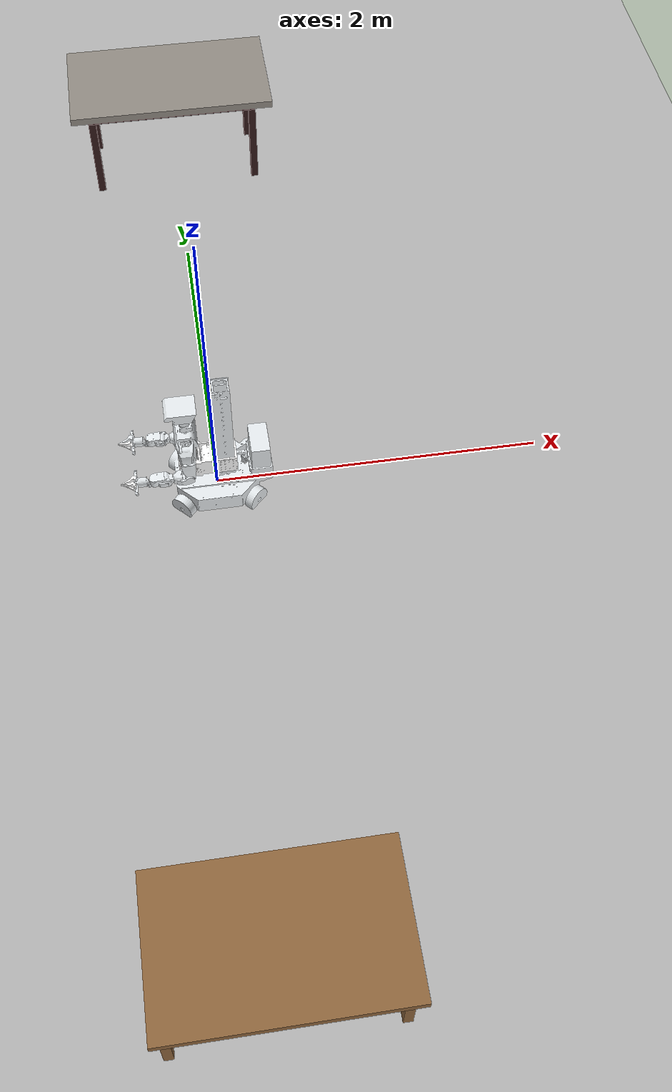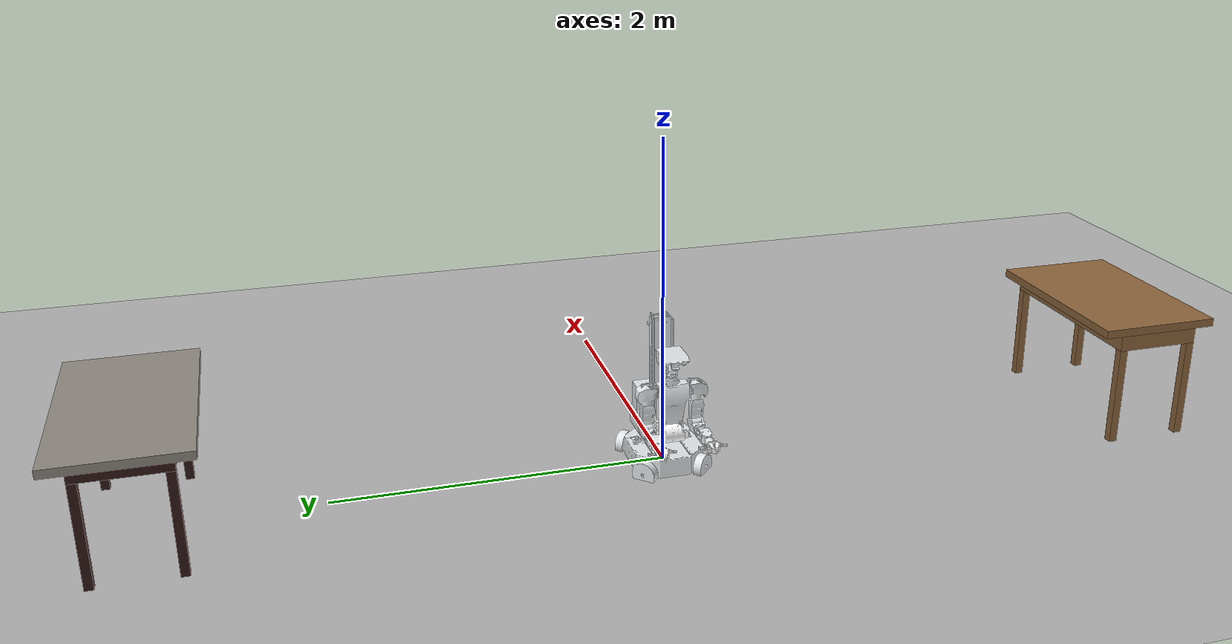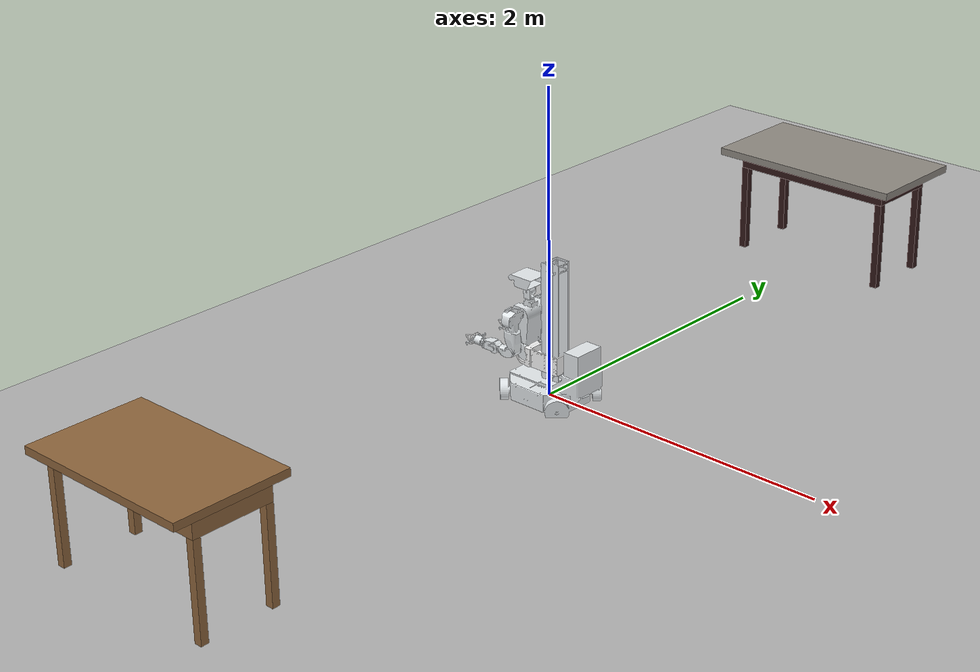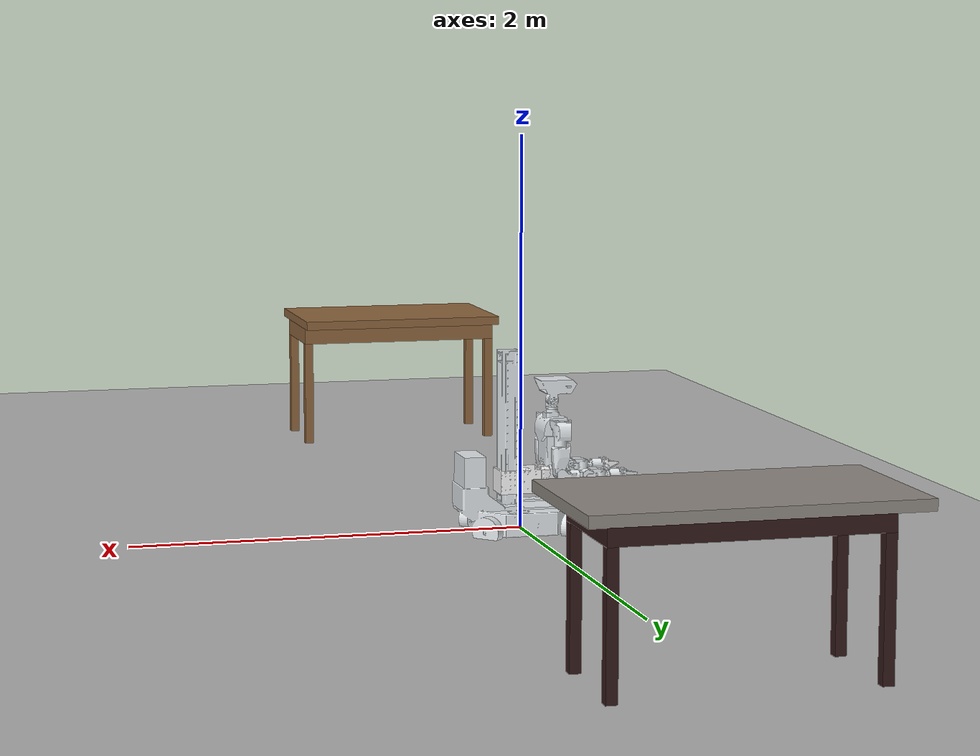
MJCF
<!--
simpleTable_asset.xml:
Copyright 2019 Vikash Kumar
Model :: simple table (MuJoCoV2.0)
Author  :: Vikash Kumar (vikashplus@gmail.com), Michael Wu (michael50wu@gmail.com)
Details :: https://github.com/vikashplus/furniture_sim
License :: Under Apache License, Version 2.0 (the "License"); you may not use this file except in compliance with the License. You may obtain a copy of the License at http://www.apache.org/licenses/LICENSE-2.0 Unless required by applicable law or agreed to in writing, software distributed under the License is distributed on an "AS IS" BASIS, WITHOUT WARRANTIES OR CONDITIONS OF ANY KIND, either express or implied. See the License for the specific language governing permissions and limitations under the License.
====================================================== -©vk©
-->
<mujoco model="X7S_scene">
    <include file="../../furniture_sim/simpleTable.xml"/>
    <include file="common.xml"/>

    <visual>
        <global offwidth="720" offheight="720"/>
    </visual>

    <worldbody>
        <light cutoff="100" diffuse="1 1 1" dir="-0 0 -1.3" directional="true" exponent="1" pos="0 0 1.3" specular=".1 .1 .1"/>
        <geom friction="1.0 .1 .1" material="MatPlane" name="floor" pos="0 0 0"  size="20 20 0.125" type="plane" condim="3" conaffinity="1"/>

        <include file="mobile_manipulator.xml"/>

    </worldbody>

</mujoco>

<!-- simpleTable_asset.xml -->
<mujocoinclude>

    <asset>
        <texture name="T_simpleWoodTable" type="cube" height="1" width="1" file="../../furniture_sim/common/textures/wood1.png" />
        <material name="M_simpleWoodTable" texture="T_simpleWoodTable" rgba="0.8 0.8 0.8 1" shininess="0.2" reflectance="0.3" texuniform="false" />
        <texture name="T_simpleMarbleTable" type="cube" height="1" width="1" file="../../furniture_sim/common/textures/stone0.png" />
        <material name="M_simpleMarbleTable" texture="T_simpleMarbleTable" rgba="0.75 0.75 0.75 1" shininess="1" reflectance="1" texuniform="false" />
        <texture name="T_simpleGraniteTable" type="cube" height="1" width="1" file="../../furniture_sim/common/textures/stone1.png" />
        <material name="M_simpleGraniteTable" texture="T_simpleGraniteTable" rgba="0.75 0.75 0.75 1" shininess="1" reflectance="1" texuniform="false" />
    </asset>

    <default>

        <default class="viz_simpleWoodTable" >
            <geom group="1" contype="0" conaffinity="0" type="mesh" material="M_simpleWoodTable"/>
        </default>

        <default class="viz_simpleMarbleTable" >
            <geom group="1" contype="0" conaffinity="0" type="mesh" material="M_simpleMarbleTable"/>
        </default>

        <default class="viz_simpleGraniteTable" >
            <geom group="1" contype="0" conaffinity="0" type="mesh" material="M_simpleGraniteTable"/>
        </default>

        <default class="body_simpleTable" >
            <geom contype="1" conaffinity="1" group="4" rgba=".4 .5 .6 1" />
            <joint limited="true" damping="1" frictionloss="0.5" armature=".01" />
        </default>

   </default>

</mujocoinclude>

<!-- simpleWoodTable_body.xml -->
<mujocoinclude>

    <!-- simpleWoodTable -©vk©-->
    <body name="simpleWoodTable" pos="0 0 0"  childclass="body_simpleTable" >
        <geom class="viz_simpleWoodTable" type="box" size=".6 .375 .025" pos="0 0 0.735"/>
        <geom class="viz_simpleWoodTable" type="box" size="0.59 0.26 .05" pos="0 0 0.66"/>
        <geom class="viz_simpleWoodTable" type="box" size="0.025 0.025 0.305" pos="-0.565 0.235 0.305"/>
        <geom class="viz_simpleWoodTable" type="box" size="0.025 0.025 0.305" pos="-0.565 -0.235 0.305"/>
        <geom class="viz_simpleWoodTable" type="box" size="0.025 0.025 0.305" pos="0.565 0.235 0.305"/>
        <geom class="viz_simpleWoodTable" type="box" size="0.025 0.025 0.305" pos="0.565 -0.235 0.305"/>

        <geom type="box" size=".6 .375 .025" pos="0 0 0.735" mass="40" />
        <geom type="box" size="0.59 0.26 .05" pos="0 0 0.66"/>
        <geom type="box" size="0.025 0.025 0.305" pos="-0.565 0.235 0.305"/>
        <geom type="box" size="0.025 0.025 0.305" pos="-0.565 -0.235 0.305"/>
        <geom type="box" size="0.025 0.025 0.305" pos="0.565 0.235 0.305"/>
        <geom type="box" size="0.025 0.025 0.305" pos="0.565 -0.235 0.305"/>
    </body>
</mujocoinclude>

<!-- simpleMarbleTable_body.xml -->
<mujocoinclude>

    <!-- simpleMarbleTable -©vk©-->
    <body name="simpleMarbleTable" pos="0 0 0" childclass="body_simpleTable" >
        <geom class="viz_simpleMarbleTable" type="box" size=".7 .375 .025" pos="0 0 0.735"/>
        <geom class="viz_simpleMarbleTable" rgba=".2 .1 .1 1" type="box" size="0.59 0.26 .05" pos="0 0 0.66"/>
        <geom class="viz_simpleMarbleTable" rgba=".2 .1 .1 1" type="box" size="0.025 0.025 0.305" pos="-0.565 0.235 0.305"/>
        <geom class="viz_simpleMarbleTable" rgba=".2 .1 .1 1" type="box" size="0.025 0.025 0.305" pos="-0.565 -0.235 0.305"/>
        <geom class="viz_simpleMarbleTable" rgba=".2 .1 .1 1" type="box" size="0.025 0.025 0.305" pos="0.565 0.235 0.305"/>
        <geom class="viz_simpleMarbleTable" rgba=".2 .1 .1 1" type="box" size="0.025 0.025 0.305" pos="0.565 -0.235 0.305"/>

        <geom type="box" size=".6 .375 .025" pos="0 0 0.735" mass="40" />
        <geom type="box" size="0.59 0.26 .05" pos="0 0 0.66"/>
        <geom type="box" size="0.025 0.025 0.305" pos="-0.565 0.235 0.305"/>
        <geom type="box" size="0.025 0.025 0.305" pos="-0.565 -0.235 0.305"/>
        <geom type="box" size="0.025 0.025 0.305" pos="0.565 0.235 0.305"/>
        <geom type="box" size="0.025 0.025 0.305" pos="0.565 -0.235 0.305"/>
    </body>
</mujocoinclude>

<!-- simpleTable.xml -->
<mujoco model="simpleTable">

    <compiler angle="radian" meshdir="" texturedir=""/>
    <include file="../furniture_sim/simpleTable/simpleTable_asset.xml"/>
    <visual>
        <headlight diffuse=".9 .9 .9"/>
    </visual>

    <worldbody>

        <body pos="0 -3 0">
            <include file="../furniture_sim/simpleTable/simpleWoodTable_body.xml" />
        </body>
        <body pos="0 3 0">
            <include file="../furniture_sim/simpleTable/simpleMarbleTable_body.xml" />
        </body>
    </worldbody>

</mujoco>

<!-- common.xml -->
<mujoco>
<option gravity="0 0 -9.81" />
<compiler angle="radian" autolimits="true"/>
<option integrator="implicitfast"/>

<default>
   <default class="X7S_base">
            <joint armature="0" damping="0" limited="false"/>

            <default class="visual">
                <geom conaffinity="0" contype="0" group="2" density="0"/>
            </default>

            <default class="collision">
                <geom conaffinity="0" condim="3" group="3" friction="1 0.5 0.5"/>
            </default>

        </default>

    <default class="X7S_body">
      <default class="position">
        <position ctrlrange="-3.1415 3.1415" kp="4500" kv="450" forcerange="-100 100"/>
        <default class="position_limited">
          <position ctrlrange="-1.5708 1.5708" kp="3500" kv="350"/>
        </default>
        <default class="position_small">
          <position kp="2000" kv="200" forcerange="-28 28"/>
        </default>
        <default class="position_finger">
          <position ctrlrange="0 0.044" kp="10000" kv="1000" forcerange="-250 250"/>
        </default>
      </default>
    </default>
</default>

  <asset>
    <texture builtin="checker" height="100" name="texplane" rgb1="0.6 0.6 0.6" rgb2="0.8 0.8 0.8" type="2d" width="100"/>
    <material name="MatPlane" reflectance="0.5" shininess="1" specular="1" texrepeat="60 60" texture="texplane" />
    <mesh name="r_wheel_link" file="r_wheel_link.STL" scale="1.2 1.2 1.2"/>
    <mesh name="r_wheel_link_collision" file="r_wheel_link_collision.STL" scale="1.2 1.2 1.2"/>
    <mesh name="l_wheel_link" file="l_wheel_link.STL" scale="1.2 1.2 1.2"/>
    <mesh name="l_wheel_link_collision" file="l_wheel_link_collision.STL" scale="1.2 1.2 1.2"/>
    <mesh name="base_link" file="base_link.STL"/>
    <mesh name="link1" file="link1.STL"/>
    <mesh name="link2" file="link2.STL"/>
    <mesh name="link3" file="link3.STL"/>
    <mesh name="link4" file="link4.STL"/>
    <mesh name="link5" file="link5.STL"/>
    <mesh name="link6" file="link6.STL"/>
    <mesh name="link7" file="link7.STL"/>
    <mesh name="link8" file="link8.STL"/>
    <mesh name="link9" file="link9.STL"/>
    <mesh name="link10" file="link10.STL"/>
    <mesh name="link11" file="link11.STL"/>
    <mesh name="link12" file="link12.STL"/>
    <mesh name="link13" file="link13.STL"/>
    <mesh name="link14" file="link14.STL"/>
    <mesh name="link15" file="link15.STL"/>
    <mesh name="link16" file="link16.STL"/>
    <mesh name="link17" file="link17.STL"/>
    <mesh name="link18" file="link18.STL"/>
    <mesh name="link19" file="link19.STL"/>
    <mesh name="link20" file="link20.STL"/>
    <mesh name="link21" file="link21.STL"/>
    <mesh name="link22" file="link22.STL"/>
  </asset>

  <tendon>
        <fixed name="left_finger_split">
            <joint joint="joint12" coef="0.5"/>
            <joint joint="joint13" coef="0.5"/>
        </fixed>
  </tendon>

  <equality>
        <joint joint1="joint12" joint2="joint13" solimp="0.95 0.99 0.01" solref="0.01 1"/>
  </equality>

  <tendon>
        <fixed name="right_finger_split">
            <joint joint="joint21" coef="0.5"/>
            <joint joint="joint22" coef="0.5"/>
        </fixed>
  </tendon>

  <equality>
        <joint joint1="joint21" joint2="joint22" solimp="0.95 0.99 0.01" solref="0.01 1"/>
  </equality>

  <actuator>
  	<position ctrllimited="true" ctrlrange="-1 1" joint="base_x_slide_joint" kp="10000" kv="1000" name="base_x_slide_joint" user="1"/>
  	<position ctrllimited="true" ctrlrange="-3.14159 3.14159" kp="10000" kv="1000" joint="base_z_hinge_joint" name="base_z_hinge_joint" user="1"/>
  </actuator>

  <actuator>
  <!-- body -->
	  <position name="joint1" joint="joint1" kp="5000" kv="500" ctrlrange="0 0.54" forcerange="-200 200"/>

	  <position class="position_limited" name="joint2" joint="joint2"/>

	  <!-- head -->
	  <position class="position_limited" name="joint3" joint="joint3"/>
	  <position class="position_limited" name="joint4" joint="joint4"/>

	  <!-- left arm -->
	  <position class="position_limited" name="joint5" joint="joint5"/>
	  <position class="position_limited" name="joint6" joint="joint6"/>
	  <position class="position_limited" name="joint7" joint="joint7"/>
	  <position class="position_limited" name="joint8" joint="joint8"/>
	  <position class="position_small" name="joint9" joint="joint9"/>
	  <position class="position_small" name="joint10" joint="joint10"/>
	  <position class="position_small" name="joint11" joint="joint11"/>

	  <!-- left finger (both prismatic) -->

	  <position class="position_finger" name="joint12" joint="joint12"/>
	  <position class="position_finger" name="joint13" joint="joint13"/>

	  <!-- Right arm -->
	  <position class="position_limited" name="joint14" joint="joint14"/>
	  <position class="position_limited" name="joint15" joint="joint15"/>
	  <position class="position_limited" name="joint16" joint="joint16"/>
	  <position class="position_limited" name="joint17" joint="joint17"/>
	  <position class="position_small" name="joint18" joint="joint18"/>
	  <position class="position_small" name="joint19" joint="joint19"/>
	  <position class="position_small" name="joint20" joint="joint20"/>

	  <!-- right finger (both prismatic) -->

	  <position class="position_finger" name="joint21" joint="joint21"/>
	  <position class="position_finger" name="joint22" joint="joint22"/>

  </actuator>

</mujoco>

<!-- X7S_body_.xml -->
<mujoco model="X7S_body">

<body>

    <body name="link1" pos="0.096 0 0.31">
      <inertial pos="-0.010805 -0.00069779 -0.059694" quat="-0.00891618 0.69214 -0.00707077 0.721673" mass="6.205" diaginertia="0.0672963 0.0603866 0.019857"/>
      <joint name="joint1" pos="0 0 0" axis="0 0 1" type="slide" range="0.0 0.54" actuatorfrcrange="-250 250" damping="1000"/>
      <geom type="mesh" rgba="1 1 1 1" mesh="link1"/>

      <body name="link2" pos="0.066 -0.0546 -0.06">
        <inertial pos="-0.000779579 0.0537606 0.220464" quat="0.999969 0.00781611 0.000496861 -4.07465e-05" mass="3.01263" diaginertia="0.03987 0.0346161 0.00966387"/>
        <joint name="joint2" pos="0 0 0" axis="0 -1 0" range="-10 10" actuatorfrcrange="-100 100"/>
        <geom type="mesh" rgba="0.898039 0.917647 0.929412 1" mesh="link2"/>
        <body name="link3" pos="0 0.0544 0.356">
          <inertial pos="-1.21665e-08 0.000155101 0.0414775" quat="0.998125 -0.0612064 0 0" mass="0.429407" diaginertia="0.00027 0.000261231 0.000178769"/>
          <joint name="joint3" pos="0 0 0" axis="0 0 1" range="-10 10" actuatorfrcrange="-100 100"/>
          <geom type="mesh" rgba="0.898039 0.917647 0.929412 1" mesh="link3"/>
          <body name="link4" pos="0 -0.025 0.049">
            <inertial pos="0.0145475 0.0229595 0.0787914" quat="0.554609 0.487433 -0.484186 0.469448" mass="1.5442" diaginertia="0.0077037 0.00575032 0.00475598"/>
            <joint name="joint4" pos="0 0 0" axis="0 -1 0" range="-10 10" actuatorfrcrange="-100 100"/>
            <geom type="mesh" rgba="0.898039 0.917647 0.929412 1" mesh="link4"/>
            <camera name="head_cam" pos="-0.1 0 0.1" quat="0.5 0.5 0.5 0.5"/>
          </body>
        </body>
        <body name="link5" pos="0 0.1424 0.28">
          <inertial pos="0.0203119 0.0282075 -0.000172804" quat="0.674894 0.674894 0.210994 0.210994" mass="0.131892" diaginertia="0.00014772 0.00014 6.228e-05"/>
          <joint name="joint5" pos="0 0 0" axis="0 1 0" range="-10 10" actuatorfrcrange="-100 100"/>
          <geom type="mesh" rgba="0.898039 0.917647 0.929412 1" mesh="link5"/>
          <body name="link6" pos="0.02725 0.063 0">
            <inertial pos="-0.0244519 0.0044012 -0.0251862" quat="0.939496 0.0137573 -0.0501379 0.338591" mass="1.03162" diaginertia="0.00170434 0.00163464 0.000871019"/>
            <joint name="joint6" pos="0 0 0" axis="-1 0 0" range="-10 10" actuatorfrcrange="-100 100"/>
            <geom type="mesh" rgba="0.898039 0.917647 0.929412 1" mesh="link6"/>
            <body name="link7" pos="-0.02725 0 -0.0865">
              <inertial pos="0.000827778 -0.00148365 -0.105295" quat="0.804799 -0.0062907 -0.0282848 0.59284" mass="0.736099" diaginertia="0.0023016 0.00229412 0.000594285"/>
              <joint name="joint7" pos="0 0 0" axis="0 0 -1" range="-10 10" actuatorfrcrange="-100 100"/>
              <geom type="mesh" rgba="0.898039 0.917647 0.929412 1" mesh="link7"/>
              <body name="link8" pos="0 -0.02725 -0.1435">
                <inertial pos="0.0593724 0.0253236 -0.012597" quat="0.00796675 0.620313 -0.0947329 0.778571" mass="0.487507" diaginertia="0.00070775 0.000552568 0.000379682"/>
                <joint name="joint8" pos="0 0 0" axis="0 -1 0" range="-10 10" actuatorfrcrange="-100 100"/>
                <geom type="mesh" rgba="0.898039 0.917647 0.929412 1" mesh="link8"/>
                <body name="link9" pos="0.0945 0.02725 -0.015">
                  <inertial pos="0.0458969 -0.000535553 -9.66306e-05" quat="0 0.707107 0 0.707107" mass="0.487432" diaginertia="0.00029 0.00027 0.00024"/>
                  <joint name="joint9" pos="0 0 0" axis="1 0 0" range="-10 10" actuatorfrcrange="-100 100"/>
                  <geom type="mesh" rgba="0.898039 0.917647 0.929412 1" mesh="link9"/>
                  <body name="link10" pos="0.05 -0.02725 0">
                    <inertial pos="0.0575036 0.0264951 0.00135889" quat="0.0626958 0.658169 -0.0940555 0.744336" mass="0.432944" diaginertia="0.000412537 0.000334457 0.000243007"/>
                    <joint name="joint10" pos="0 0 0" axis="0 -1 0" range="-10 10" actuatorfrcrange="-100 100"/>
                    <geom type="mesh" rgba="0.898039 0.917647 0.929412 1" mesh="link10"/>
                    <body name="link11" pos="0.066 0.02725 -0.022">
                      <inertial pos="0.0782375 2.27689e-05 0.0203908" quat="0 0.784141 0 0.620583" mass="0.471848" diaginertia="0.000654164 0.00043 0.000385836"/>
                      <joint name="joint11" pos="0 0 0" axis="0 0 -1" range="-10 10" actuatorfrcrange="-100 100"/>
                      <geom type="mesh" rgba="0.898039 0.917647 0.929412 1" mesh="link11"/>
                      <body name="link12" pos="0.12737 0.024896 0.021756">
                        <inertial pos="-0.000355223 -0.00782704 -0.00298832" quat="0.5 0.5 0.5 0.5" mass="0.0647982" diaginertia="3e-05 3e-05 2e-05"/>
                        <joint name="joint12" pos="0 0 0" axis="0 1 0" type="slide" range="0 0.044" actuatorfrcrange="-100 100" damping="10000"/>
                        <geom type="mesh" rgba="1 1 1 1" mesh="link12"/>
                      </body>
                      <body name="link13" pos="0.12737 -0.0249 0.021756">
                        <inertial pos="-0.000355223 0.00782769 0.00242006" quat="0.5 0.5 0.5 0.5" mass="0.0647982" diaginertia="3e-05 3e-05 2e-05"/>
                        <joint name="joint13" pos="0 0 0" axis="0 -1 0" type="slide" range="0 0.044" actuatorfrcrange="-100 100" damping="10000"/>
                        <geom type="mesh" rgba="1 1 1 1" mesh="link13"/>
                      </body>
                    </body>
                  </body>
                </body>
              </body>
            </body>
          </body>
        </body>
        <body name="link14" pos="0 -0.0336 0.28">
          <inertial pos="0.0203119 -0.0282075 -0.000172804" quat="0.674894 0.674894 -0.210994 -0.210994" mass="0.131892" diaginertia="0.00014772 0.00014 6.228e-05"/>
          <joint name="joint14" pos="0 0 0" axis="0 -1 0" range="-10 10" actuatorfrcrange="-100 100"/>
          <geom type="mesh" rgba="0.898039 0.917647 0.929412 1" mesh="link14"/>
          <body name="link15" pos="0.02725 -0.063 0">
            <inertial pos="-0.0244519 -0.00440118 -0.0251861" quat="0.939496 -0.0137573 -0.0501379 -0.338591" mass="1.03162" diaginertia="0.00170434 0.00163464 0.000871019"/>
            <joint name="joint15" pos="0 0 0" axis="-1 0 0" range="-10 10" actuatorfrcrange="-100 100"/>
            <geom type="mesh" rgba="0.898039 0.917647 0.929412 1" mesh="link15"/>
            <body name="link16" pos="-0.02725 0 -0.0865">
              <inertial pos="0.00082778 0.00148435 -0.105295" quat="0.59284 -0.0282848 -0.0062907 0.804799" mass="0.736099" diaginertia="0.0023016 0.00229412 0.000594285"/>
              <joint name="joint16" pos="0 0 0" axis="0 0 -1" range="-10 10" actuatorfrcrange="-100 100"/>
              <geom type="mesh" rgba="0.898039 0.917647 0.929412 1" mesh="link16"/>
              <body name="link17" pos="0 0.02725 -0.1435">
                <inertial pos="0.0593724 -0.0253233 -0.0127287" quat="-0.00796675 0.620313 0.0947329 0.778571" mass="0.487507" diaginertia="0.00070775 0.000552568 0.000379682"/>
                <joint name="joint17" pos="0 0 0" axis="0 1 0" range="-10 10" actuatorfrcrange="-100 100"/>
                <geom type="mesh" rgba="0.898039 0.917647 0.929412 1" mesh="link17"/>
                <body name="link18" pos="0.0945 -0.02725 -0.015">
                  <inertial pos="0.045897 0.000535553 -2.35789e-05" quat="0 0.707107 0 0.707107" mass="0.487432" diaginertia="0.00029 0.00027 0.00024"/>
                  <joint name="joint18" pos="0 0 0" axis="1 0 0" range="-10 10" actuatorfrcrange="-100 100"/>
                  <geom type="mesh" rgba="0.898039 0.917647 0.929412 1" mesh="link18"/>
                  <body name="link19" pos="0.05 0.02725 0">
                    <inertial pos="0.0575036 -0.0265307 0.00135892" quat="-0.0626958 0.658169 0.0940555 0.744336" mass="0.432944" diaginertia="0.000412537 0.000334457 0.000243007"/>
                    <joint name="joint19" pos="0 0 0" axis="0 1 0" range="-10 10" actuatorfrcrange="-100 100"/>
                    <geom type="mesh" rgba="0.898039 0.917647 0.929412 1" mesh="link19"/>
                    <body name="link20" pos="0.066 -0.02725 -0.022">
                      <inertial pos="0.0782375 2.27689e-05 0.0203908" quat="0 0.784141 0 0.620583" mass="0.471848" diaginertia="0.000654164 0.00043 0.000385836"/>
                      <joint name="joint20" pos="0 0 0" axis="0 0 -1" range="-10 10" actuatorfrcrange="-100 100"/>
                      <geom type="mesh" rgba="0.898039 0.917647 0.929412 1" mesh="link20"/>

                      <body name="link21" pos="0.12737 0.024896 0.021756">
                        <inertial pos="-0.000355223 -0.00782704 -0.00298832" quat="0.5 0.5 0.5 0.5" mass="0.0647982" diaginertia="3e-05 3e-05 2e-05"/>
                        <joint name="joint21" pos="0 0 0" axis="0 1 0" type="slide" range="0 0.044" actuatorfrcrange="-100 100" damping="10000"/>
                        <geom type="mesh" rgba="1 1 1 1" mesh="link21"/>
                      </body>
                      <body name="link22" pos="0.12737 -0.024896 0.021756">
                        <inertial pos="-0.000355223 0.00782769 0.00242006" quat="0.5 0.5 0.5 0.5" mass="0.0647982" diaginertia="3e-05 3e-05 2e-05"/>
                        <joint name="joint22" pos="0 0 0" axis="0 -1 0" type="slide" range="0 0.044" actuatorfrcrange="-100 100" damping="10000"/>
                        <geom type="mesh" rgba="0.898039 0.917647 0.929412 1" mesh="link22"/>
                      </body>
                    </body>
                  </body>
                </body>
              </body>
            </body>
          </body>
        </body>
      </body>
    </body>
</body>

</mujoco>

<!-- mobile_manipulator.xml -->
<mujoco model="mobile_manipulator">
   <body name="base_link" pos="0 0 0" quat="0 0 0 1">
	<inertial pos="-0.061403 0.00062999 0.18169" quat="0 0 0 1" mass="27.286" diaginertia="1.61101 1.99174 1.07279"/>
	<geom type="mesh" mesh="base_link" rgba="0.89804 0.91765 0.92941 1"/>

	<joint armature="0.0001" axis="1 0 0" damping="1e+11" name="robot0:slide0" pos="0 0 0" type="slide"></joint>
	<joint armature="0.0001" axis="0 1 0" damping="1e+11" name="robot0:slide1" pos="0 0 0" type="slide"></joint>
	<joint armature="0.0001" axis="0 0 1" damping="1e+0" name="robot0:slide2" pos="0 0 0" type="slide"></joint>
	<joint name="base_x_slide_joint" type="slide" pos="0 0 0" axis="1 0 0" limited="true" range="-1 1" damping="15000"/>
        <joint name="base_z_hinge_joint" type="hinge" pos="0 0 0" axis="0 0 1" limited="true" range="-3.14159 3.14159" damping="15000"/>

        <body name="X7S_body" childclass="X7S_body">
            <include file="X7S_body_.xml"/>
        </body>

    </body>

</mujoco>
